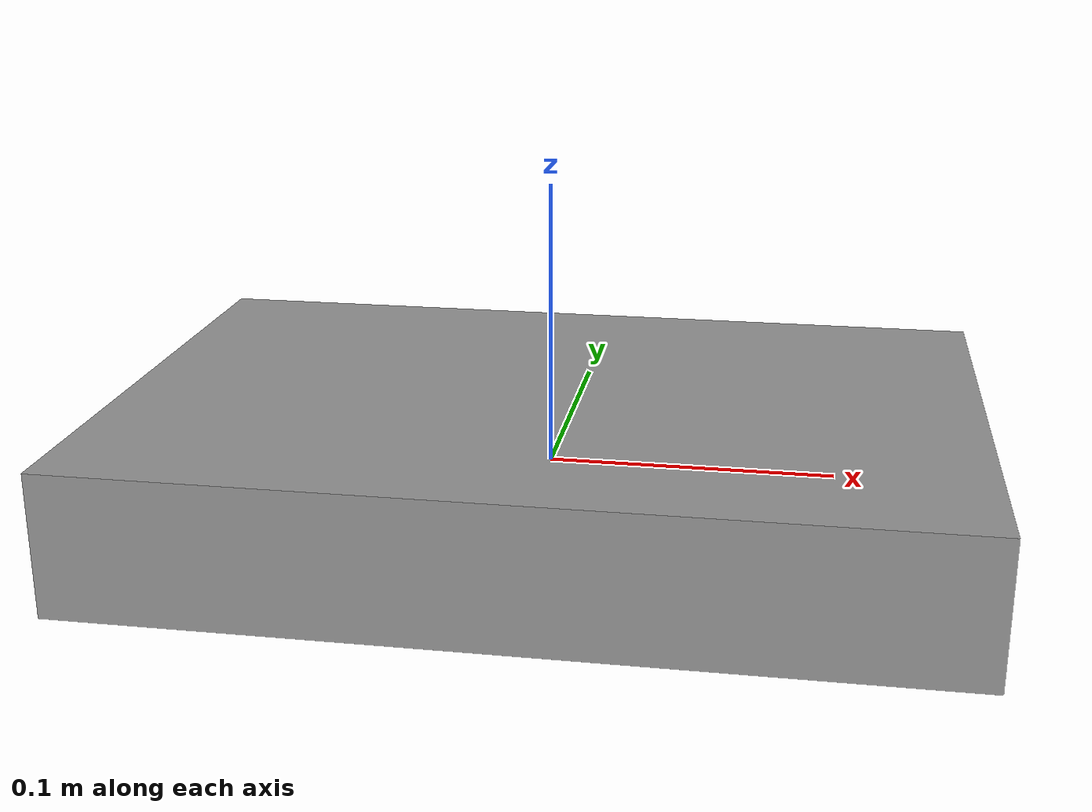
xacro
<?xml version="1.0"?>
<robot xmlns:xacro="http://www.ros.org/wiki/xacro" name="omnibot">
  <!-- Tham số bán kính bánh và offset LiDAR -->
  <xacro:property name="wheel_radius" value="0.04"/>
  <xacro:property name="lidar_x" value="0.1"/>
  <xacro:property name="lidar_y" value="0.0"/>
  <xacro:property name="lidar_z" value="0.2"/>

  <!-- Link cơ sở -->
  <link name="base_link">
    <inertial>
      <origin xyz="0 0 0" rpy="0 0 0"/>
      <mass value="1.0"/>
      <inertia
        ixx="0.1" ixy="0.0" ixz="0.0"
        iyy="0.1" iyz="0.0"
        izz="0.1"/>
    </inertial>
    <visual>
      <geometry>
        <box size="0.3 0.2 0.05"/>
      </geometry>
      <material name="grey"/>
    </visual>
    <collision>
      <geometry>
        <box size="0.3 0.2 0.05"/>
      </geometry>
    </collision>
  </link>

  <!-- LiDAR link & joint -->
  <link name="laser_frame"/>
  <joint name="base_to_laser" type="fixed">
    <parent link="base_link"/>
    <child  link="laser_frame"/>
    <origin xyz="${lidar_x} ${lidar_y} ${lidar_z}" rpy="0 0 0"/>
  </joint>

  <!-- (Nếu cần mô tả bánh xe, thêm các link/joint ở đây) -->
</robot>
